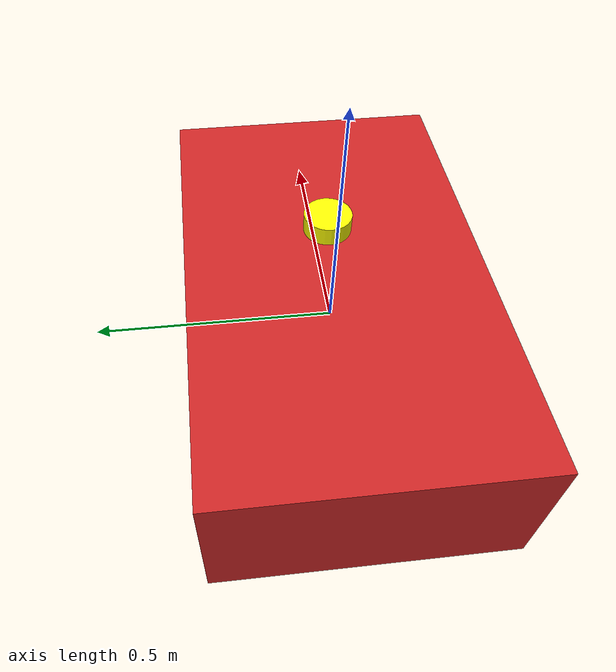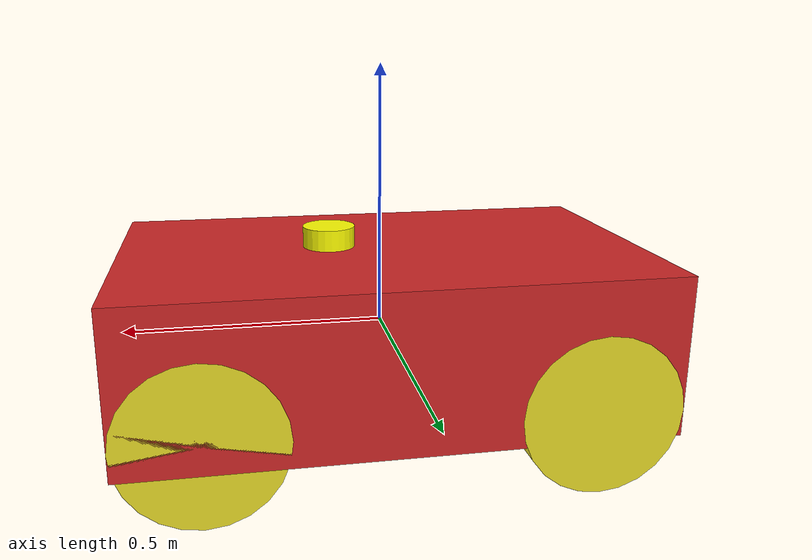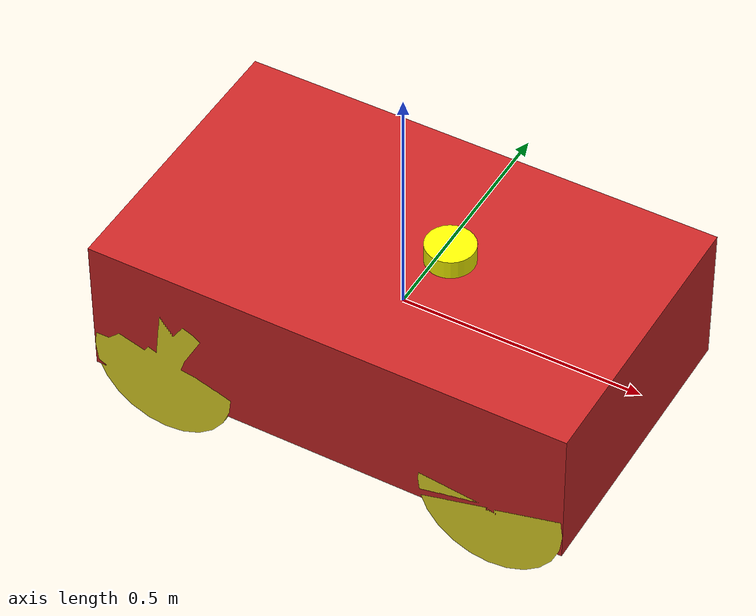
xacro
<?xml version="1.0"?>
<robot xmlns:xacro="http://www.ros.org/wiki/xacro" name="differential_drive_robot">

    <!-- FROM HERE WE DEFINE MODEL PARAMETERS -->
    <!-- Body dimensions -->
    <xacro:property name="body_link_x_dim" value="1"/>
    <xacro:property name="body_link_y_dim" value="0.6"/>
    <xacro:property name="body_link_z_dim" value="0.3"/>

    <!-- Wheel dimensions -->
    <xacro:property name="wheel_link_radius" value="0.15"/>
    <xacro:property name="wheel_link_length" value="0.1"/>
    <xacro:property name="wheel_link_z_location" value="-0.1"/>

    <!-- Material density -->
    <xacro:property name="body_density" value="2710.0"/>
    <xacro:property name="wheel_density" value="2710.0"/>

    <!-- Pi constant -->
    <xacro:property name="pi_const" value="3.14159265"/>

    <!-- Robot body and wheel mass-->
    <xacro:property name="body_mass" value="${body_density * body_link_x_dim * body_link_y_dim * body_link_z_dim}"/>
    <xacro:property name="wheel_mass" value="${wheel_density * pi_const * wheel_link_radius * wheel_link_length}"/>

    <!-- Moments of inertia of the wheel -->
    <xacro:property name="Iz_wheel" value="${0.5 * wheel_mass * wheel_link_radius * wheel_link_radius}"/>
    <xacro:property name="I_wheel" value="${(1.0 / 12.0) * wheel_mass * (3.0 * wheel_link_radius * wheel_link_radius + wheel_link_length * wheel_link_length)}"/>

    <!-- This macro defines the complete inertial section of the wheel -->
    <xacro:macro name="inertia_wheel">
        <inertial>
            <origin rpy="0 0 0" xyz="0 0 0"/>
            <mass value="${wheel_mass}"/>
            <inertia ixx="${I_wheel}" ixy="0.0" ixz="0.0" iyy="${I_wheel}" iyz="0" izz="${Iz_wheel}"/>
        </inertial>
    </xacro:macro>

    <!-- Over here we include the file that defines extra Gazebo options and motion control driver -->
    <xacro:include filename="$(find yambot)/urdf/mobile_robot.gazebo" />

    <!-- FROM HERE WE DEFINE LINKS, JOINTS -->
    <!-- Define the odom link -->
    <link name="odom">
        <visual>
            <geometry>
                <box size="0 0 0"/> <!-- Odom link is not visible, hence empty -->
            </geometry>
        </visual>
        <collision>
            <geometry>
                <box size="0 0 0"/> <!-- Odom link has no collision, hence empty -->
            </geometry>
        </collision>
    </link>

    <!-- Joint to connect odom frame to the robot -->
    <joint name="odom_to_body" type="fixed">
        <parent link="odom"/>
        <child link="body_link"/> <!-- Changed from body_link to body_link -->
        <origin xyz="0 0 0" rpy="0 0 0"/> <!-- Assuming no offset, you can change if needed -->
    </joint>

    <link name="body_link"> <!-- Changed from body_link to body_link -->
        <visual>
            <geometry>
                <box size="${body_link_x_dim} ${body_link_y_dim} ${body_link_z_dim}"/>
            </geometry>
            <origin rpy="0 0 0" xyz="0 0 0"/>
        </visual>

        <collision>
            <geometry>
                <box size="${body_link_x_dim} ${body_link_y_dim} ${body_link_z_dim}"/>
            </geometry>
            <origin rpy="0 0 0" xyz="0 0 0"/>
        </collision>

        <inertial>
            <origin rpy="0 0 0" xyz="0 0 0"/>
            <mass value="${body_mass}"/>
            <inertia
                ixx="${(1/12)*body_mass*(body_link_y_dim*body_link_y_dim + body_link_z_dim*body_link_z_dim)}"
                ixy="0" ixz="0"
                iyy="${(1/12)*body_mass*(body_link_x_dim*body_link_x_dim + body_link_z_dim*body_link_z_dim)}"
                iyz="0"
                izz="${(1/12)*body_mass*(body_link_y_dim*body_link_y_dim + body_link_x_dim*body_link_x_dim)}"/>
        </inertial>
    </link>

    <!-- START: Back right wheel of the robot and joint -->
    <joint name="wheel1_joint" type="continuous">
        <parent link="body_link"/>
        <child link="wheel1_link"/>
        <origin xyz="${-body_link_x_dim/2 + wheel_link_radius} ${-body_link_y_dim/2 + wheel_link_length/2} ${wheel_link_z_location}" rpy="0 0 0"/>
        <axis xyz="0 1 0"/>
        <limit effort="1000" velocity="1000"/>
        <dynamics damping="1.0" friction="1.0"/>
    </joint>

    <link name="wheel1_link">
        <visual>
            <origin rpy="1.570795 0 0" xyz="0 0 0"/>
            <geometry>
                <cylinder length="${wheel_link_length}" radius="${wheel_link_radius}"/>
            </geometry>
        </visual>

        <collision>
            <origin rpy="1.570795 0 0" xyz="0 0 0"/>
            <geometry>
                <cylinder length="${wheel_link_length}" radius="${wheel_link_radius}"/>
            </geometry>
        </collision>

        <xacro:inertia_wheel/>
    </link>
    <!-- END: Back right wheel of the robot and joint -->

    <!-- START: Back left wheel of the robot and joint -->
    <joint name="wheel2_joint" type="continuous">
        <parent link="body_link"/>
        <child link="wheel2_link"/>
        <origin xyz="${-body_link_x_dim/2 + wheel_link_radius} ${body_link_y_dim/2 - wheel_link_length/2} ${wheel_link_z_location}" rpy="0 0 0"/>
        <axis xyz="0 1 0"/>
        <limit effort="1000" velocity="1000"/>
        <dynamics damping="1.0" friction="1.0"/>
    </joint>

    <link name="wheel2_link">
        <visual>
            <origin rpy="1.570795 0 0" xyz="0 0 0"/>
            <geometry>
                <cylinder length="${wheel_link_length}" radius="${wheel_link_radius}"/>
            </geometry>
        </visual>

        <collision>
            <origin rpy="1.570795 0 0" xyz="0 0 0"/>
            <geometry>
                <cylinder length="${wheel_link_length}" radius="${wheel_link_radius}"/>
            </geometry>
        </collision>

        <xacro:inertia_wheel/>
    </link>
    <!-- END: Back left wheel of the robot and joint -->

    <!-- START: Front right wheel of the robot and joint -->
    <joint name="wheel3_joint" type="continuous">
        <parent link="body_link"/>
        <child link="wheel3_link"/>
        <origin xyz="${body_link_x_dim/2 - wheel_link_radius} ${-body_link_y_dim/2 + wheel_link_length/2} ${wheel_link_z_location}" rpy="0 0 0"/>
        <axis xyz="0 1 0"/>
        <limit effort="1000" velocity="1000"/>
        <dynamics damping="1.0" friction="1.0"/>
    </joint>

    <link name="wheel3_link">
        <visual>
            <origin rpy="1.570795 0 0" xyz="0 0 0"/>
            <geometry>
                <cylinder length="${wheel_link_length}" radius="${wheel_link_radius}"/>
            </geometry>
        </visual>

        <collision>
            <origin rpy="1.570795 0 0" xyz="0 0 0"/>
            <geometry>
                <cylinder length="${wheel_link_length}" radius="${wheel_link_radius}"/>
            </geometry>
        </collision>

        <xacro:inertia_wheel/>
    </link>
    <!-- END: Front right wheel of the robot and joint -->

    <!-- START: Front left wheel of the robot and joint -->
    <joint name="wheel4_joint" type="continuous">
        <parent link="body_link"/>
        <child link="wheel4_link"/>
        <origin xyz="${body_link_x_dim/2 - wheel_link_radius} ${body_link_y_dim/2 - wheel_link_length/2} ${wheel_link_z_location}" rpy="0 0 0"/>
        <axis xyz="0 1 0"/>
        <limit effort="1000" velocity="1000"/>
        <dynamics damping="1.0" friction="1.0"/>
    </joint>

    <link name="wheel4_link">
        <visual>
            <origin rpy="1.570795 0 0" xyz="0 0 0"/>
            <geometry>
                <cylinder length="${wheel_link_length}" radius="${wheel_link_radius}"/>
            </geometry>
        </visual>

        <collision>
            <origin rpy="1.570795 0 0" xyz="0 0 0"/>
            <geometry>
                <cylinder length="${wheel_link_length}" radius="${wheel_link_radius}"/>
            </geometry>
        </collision>

        <xacro:inertia_wheel/>
    </link>
    <!-- END: Front left wheel of the robot and joint -->

<!-- LiDAR Sensor -->
<xacro:include filename="$(find yambot)/urdf/lidar.xacro" />

</robot>

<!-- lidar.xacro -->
<robot xmlns:xacro="http://www.ros.org/wiki/xacro">

    <!-- Define parameters for the LiDAR -->
    <xacro:property name="laser_radius" value="0.05"/>
    <xacro:property name="laser_length" value="0.04"/>
    <xacro:property name="laser_height" value="0.175"/>
    <xacro:property name="laser_mass" value="0.1"/>

    <!-- Define the material for the LiDAR -->
    <material name="yellow">
    	<color rgba="1 1 0 1"/> <!-- Define the yellow material with full opacity -->
    </material>

    <!-- This macro defines the complete inertial section of the LiDAR -->
    <xacro:macro name="inertial_laser">
        <inertial>
            <origin xyz="0 0 0" rpy="0 0 0"/>
            <mass value="${laser_mass}"/>
            <inertia
                ixx="${(1/12)*laser_mass*(3*laser_radius*laser_radius + laser_length*laser_length)}"
                ixy="0" ixz="0"
                iyy="${(1/12)*laser_mass*(3*laser_radius*laser_radius + laser_length*laser_length)}"
                iyz="0"
                izz="${0.5 * laser_mass * laser_radius * laser_radius}"/>
        </inertial>
    </xacro:macro>

    <link name="laser_frame">
        <visual>
            <geometry>
                <cylinder radius="${laser_radius}" length="${laser_length}"/>
            </geometry>
            <material name="yellow"/> <!-- Use the defined material -->
        </visual>
        <collision>
            <geometry>
                <cylinder radius="${laser_radius}" length="${laser_length}"/>
            </geometry>
        </collision>
        <xacro:inertial_laser/>
    </link>

    <joint name="laser_joint" type="fixed">
        <parent link="body_link"/>  <!-- Make sure this matches the robot's body link -->
        <child link="laser_frame"/>
        <origin xyz="0.1 0 0.175" rpy="0 0 0"/>
    </joint>

    <gazebo reference="laser_frame">
        <material>Gazebo/Yellow</material> <!-- Ensure the material is correctly referenced -->
        <sensor name="laser" type="ray">
            <pose>0 0 0 0 0 0</pose>
            <visualize>true</visualize>
            <update_rate>10</update_rate>
            <ray>
                <scan>
                    <horizontal>
                        <samples>360</samples>
                        <min_angle>-3.14</min_angle>
                        <max_angle>3.14</max_angle>
                    </horizontal>
                </scan>
                <range>
                    <min>0.3</min>
                    <max>12</max>
                </range>
            </ray>
            <plugin name="laser_controller" filename="libgazebo_ros_ray_sensor.so">
                <ros>
                    <remapping>~/out:=/scan</remapping>
                </ros>
                <output_type>sensor_msgs/LaserScan</output_type>
                <frame_name>laser_frame</frame_name>
            </plugin>
        </sensor>
    </gazebo>

</robot>
